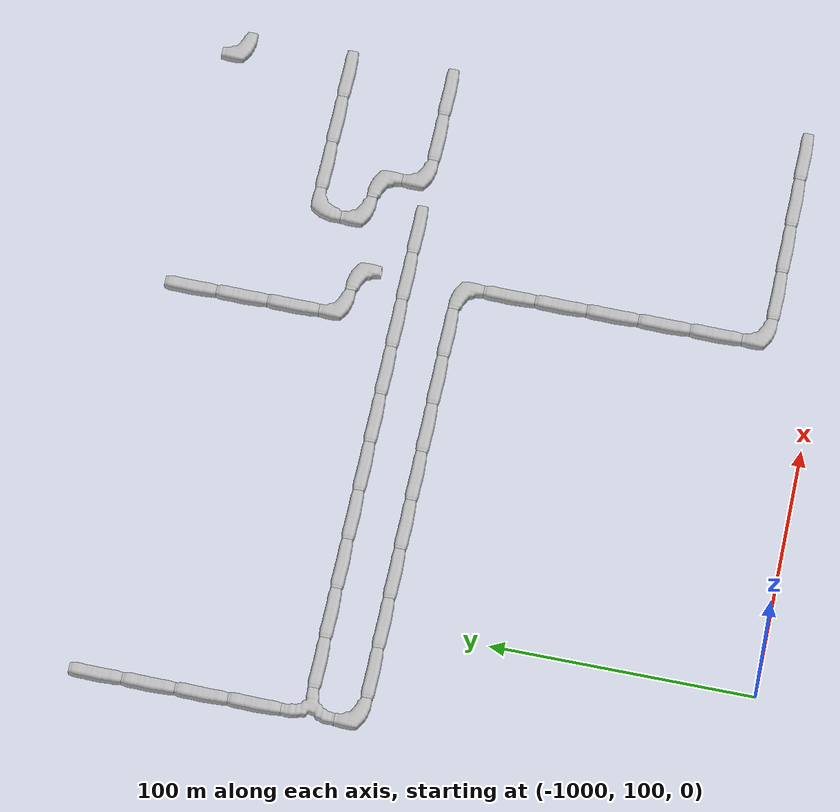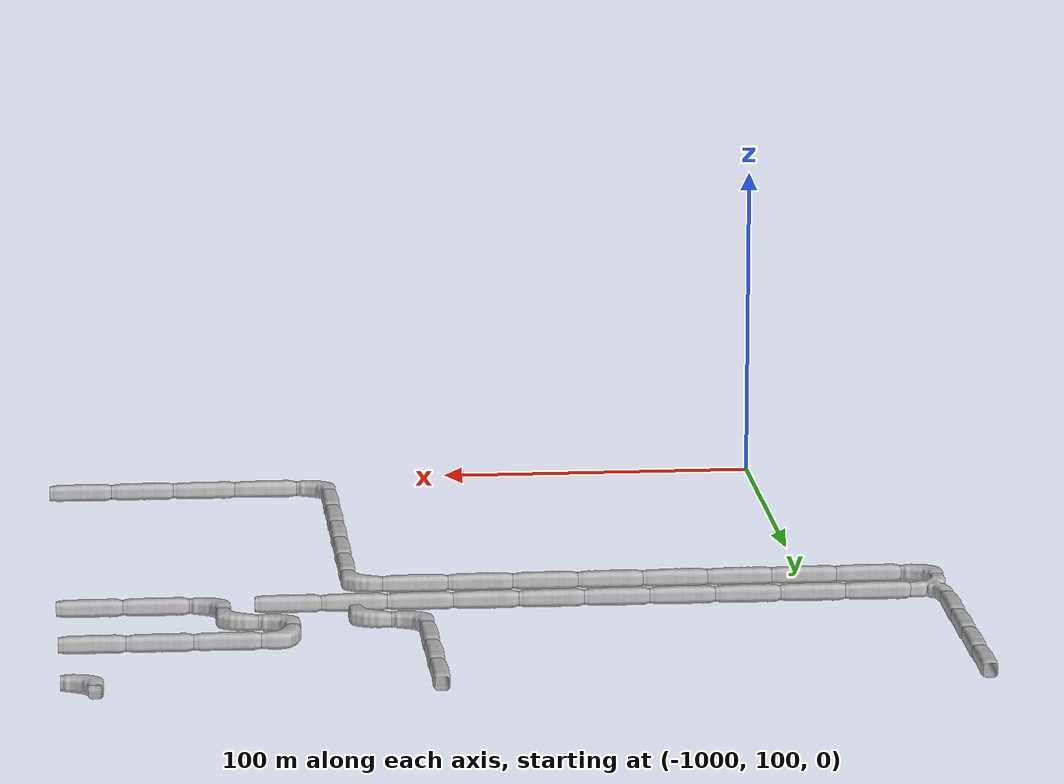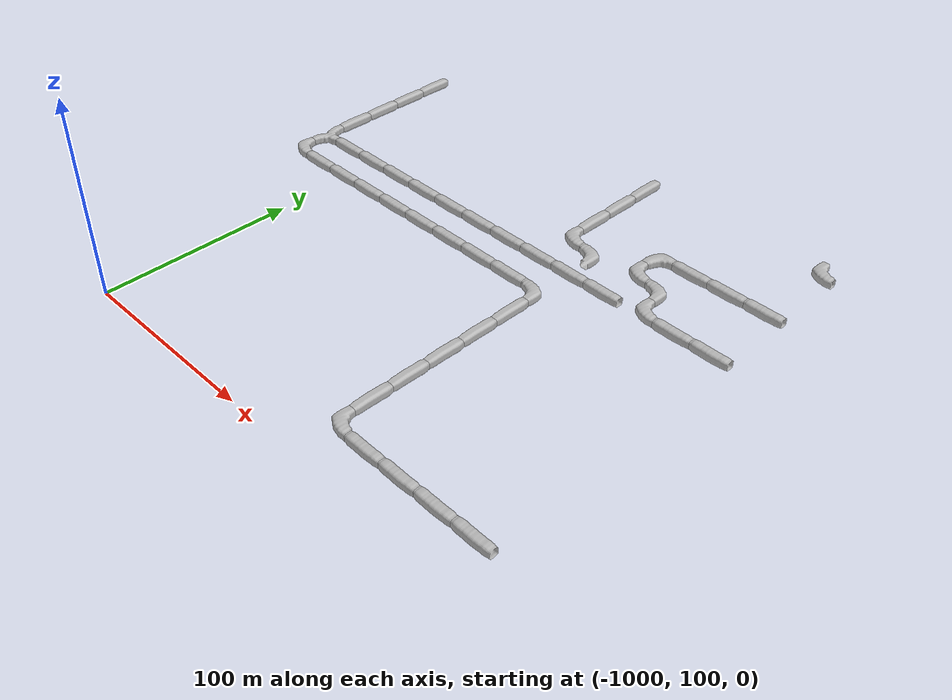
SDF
<sdf version="1.6">
 <world name="cave_16000">
  <include>
   <static>true</static>
   <name>cave_-39_6</name>
   <pose>-780 120 0 0 0 1.5707963267948966</pose>
   <uri>model://cave_straight_20m</uri>
  </include>
  <include>
   <static>true</static>
   <name>cave_-40_6</name>
   <pose>-800 120 0 0 0 1.5707963267948966</pose>
   <uri>model://cave_straight_20m</uri>
  </include>
  <include>
   <static>true</static>
   <name>cave_-41_6</name>
   <pose>-820 120 0 0 0 1.5707963267948966</pose>
   <uri>model://cave_straight_20m</uri>
  </include>
  <include>
   <static>true</static>
   <name>cave_-42_6</name>
   <pose>-840 120 0 0 0 1.5707963267948966</pose>
   <uri>model://cave_straight_20m</uri>
  </include>
  <include>
   <static>true</static>
   <name>cave_-43_6</name>
   <pose>-860 120 0 0 0 0.0</pose>
   <uri>model://cave_L_20m</uri>
  </include>
  <include>
   <static>true</static>
   <name>cave_-43_7</name>
   <pose>-860 140 0 0 0 0.0</pose>
   <uri>model://cave_straight_20m</uri>
  </include>
  <include>
   <static>true</static>
   <name>cave_-43_8</name>
   <pose>-860 160 0 0 0 0.0</pose>
   <uri>model://cave_straight_20m</uri>
  </include>
  <include>
   <static>true</static>
   <name>cave_-43_9</name>
   <pose>-860 180 0 0 0 0.0</pose>
   <uri>model://cave_straight_20m</uri>
  </include>
  <include>
   <static>true</static>
   <name>cave_-43_10</name>
   <pose>-860 200 0 0 0 0.0</pose>
   <uri>model://cave_straight_20m</uri>
  </include>
  <include>
   <static>true</static>
   <name>cave_-43_11</name>
   <pose>-860 220 0 0 0 0.0</pose>
   <uri>model://cave_straight_20m</uri>
  </include>
  <include>
   <static>true</static>
   <name>cave_-43_12</name>
   <pose>-860 240 0 0 0 3.141592653589793</pose>
   <uri>model://cave_L_20m</uri>
  </include>
  <include>
   <static>true</static>
   <name>cave_-44_12</name>
   <pose>-880 240 0 0 0 1.5707963267948966</pose>
   <uri>model://cave_straight_20m</uri>
  </include>
  <include>
   <static>true</static>
   <name>cave_-45_12</name>
   <pose>-900 240 0 0 0 1.5707963267948966</pose>
   <uri>model://cave_straight_20m</uri>
  </include>
  <include>
   <static>true</static>
   <name>cave_-46_12</name>
   <pose>-920 240 0 0 0 1.5707963267948966</pose>
   <uri>model://cave_straight_20m</uri>
  </include>
  <include>
   <static>true</static>
   <name>cave_-47_12</name>
   <pose>-940 240 0 0 0 1.5707963267948966</pose>
   <uri>model://cave_straight_20m</uri>
  </include>
  <include>
   <static>true</static>
   <name>cave_-48_12</name>
   <pose>-960 240 0 0 0 1.5707963267948966</pose>
   <uri>model://cave_straight_20m</uri>
  </include>
  <include>
   <static>true</static>
   <name>cave_-49_12</name>
   <pose>-980 240 0 0 0 1.5707963267948966</pose>
   <uri>model://cave_straight_20m</uri>
  </include>
  <include>
   <static>true</static>
   <name>cave_-50_12</name>
   <pose>-1000 240 0 0 0 1.5707963267948966</pose>
   <uri>model://cave_straight_20m</uri>
  </include>
  <include>
   <static>true</static>
   <name>cave_-51_12</name>
   <pose>-1020 240 0 0 0 1.5707963267948966</pose>
   <uri>model://cave_straight_20m</uri>
  </include>
  <include>
   <static>true</static>
   <name>cave_-52_12</name>
   <pose>-1040 240 0 0 0 0.0</pose>
   <uri>model://cave_L_20m</uri>
  </include>
  <include>
   <static>true</static>
   <name>cave_-52_13</name>
   <pose>-1040 260 0 0 0 -1.5707963267948966</pose>
   <uri>model://cave_3way_20m</uri>
  </include>
  <include>
   <static>true</static>
   <name>cave_-51_13</name>
   <pose>-1020 260 0 0 0 1.5707963267948966</pose>
   <uri>model://cave_straight_20m</uri>
  </include>
  <include>
   <static>true</static>
   <name>cave_-50_13</name>
   <pose>-1000 260 0 0 0 1.5707963267948966</pose>
   <uri>model://cave_straight_20m</uri>
  </include>
  <include>
   <static>true</static>
   <name>cave_-49_13</name>
   <pose>-980 260 0 0 0 1.5707963267948966</pose>
   <uri>model://cave_straight_20m</uri>
  </include>
  <include>
   <static>true</static>
   <name>cave_-48_13</name>
   <pose>-960 260 0 0 0 1.5707963267948966</pose>
   <uri>model://cave_straight_20m</uri>
  </include>
  <include>
   <static>true</static>
   <name>cave_-47_13</name>
   <pose>-940 260 0 0 0 1.5707963267948966</pose>
   <uri>model://cave_straight_20m</uri>
  </include>
  <include>
   <static>true</static>
   <name>cave_-46_13</name>
   <pose>-920 260 0 0 0 1.5707963267948966</pose>
   <uri>model://cave_straight_20m</uri>
  </include>
  <include>
   <static>true</static>
   <name>cave_-45_13</name>
   <pose>-900 260 0 0 0 1.5707963267948966</pose>
   <uri>model://cave_straight_20m</uri>
  </include>
  <include>
   <static>true</static>
   <name>cave_-44_13</name>
   <pose>-880 260 0 0 0 1.5707963267948966</pose>
   <uri>model://cave_straight_20m</uri>
  </include>
  <include>
   <static>true</static>
   <name>cave_-43_13</name>
   <pose>-860 260 0 0 0 1.5707963267948966</pose>
   <uri>model://cave_straight_20m</uri>
  </include>
  <include>
   <static>true</static>
   <name>cave_-42_13</name>
   <pose>-840 260 0 0 0 1.5707963267948966</pose>
   <uri>model://cave_straight_20m</uri>
  </include>
  <include>
   <static>true</static>
   <name>cave_-52_14</name>
   <pose>-1040 280 0 0 0 0.0</pose>
   <uri>model://cave_straight_20m</uri>
  </include>
  <include>
   <static>true</static>
   <name>cave_-52_15</name>
   <pose>-1040 300 0 0 0 0.0</pose>
   <uri>model://cave_straight_20m</uri>
  </include>
  <include>
   <static>true</static>
   <name>cave_-52_16</name>
   <pose>-1040 320 0 0 0 0.0</pose>
   <uri>model://cave_straight_20m</uri>
  </include>
  <include>
   <static>true</static>
   <name>cave_-52_17</name>
   <pose>-1040 340 0 0 0 0.0</pose>
   <uri>model://cave_straight_20m</uri>
  </include>
  <include>
   <static>true</static>
   <name>cave_-39_15</name>
   <pose>-780 300 0 0 0 1.5707963267948966</pose>
   <uri>model://cave_straight_20m</uri>
  </include>
  <include>
   <static>true</static>
   <name>cave_-40_15</name>
   <pose>-800 300 0 0 0 1.5707963267948966</pose>
   <uri>model://cave_straight_20m</uri>
  </include>
  <include>
   <static>true</static>
   <name>cave_-41_15</name>
   <pose>-820 300 0 0 0 1.5707963267948966</pose>
   <uri>model://cave_straight_20m</uri>
  </include>
  <include>
   <static>true</static>
   <name>cave_-42_15</name>
   <pose>-840 300 0 0 0 -1.5707963267948966</pose>
   <uri>model://cave_L_20m</uri>
  </include>
  <include>
   <static>true</static>
   <name>cave_-42_14</name>
   <pose>-840 280 0 0 0 0.0</pose>
   <uri>model://cave_L_20m</uri>
  </include>
  <include>
   <static>true</static>
   <name>cave_-41_14</name>
   <pose>-820 280 0 0 0 3.141592653589793</pose>
   <uri>model://cave_L_20m</uri>
  </include>
  <include>
   <static>true</static>
   <name>cave_-41_13</name>
   <pose>-820 260 0 0 0 0.0</pose>
   <uri>model://cave_L_20m</uri>
  </include>
  <include>
   <static>true</static>
   <name>cave_-40_13</name>
   <pose>-800 260 0 0 0 1.5707963267948966</pose>
   <uri>model://cave_straight_20m</uri>
  </include>
  <include>
   <static>true</static>
   <name>cave_-39_13</name>
   <pose>-780 260 0 0 0 1.5707963267948966</pose>
   <uri>model://cave_straight_20m</uri>
  </include>
  <include>
   <static>true</static>
   <name>cave_-39_17</name>
   <pose>-780 340 0 0 0 0.0</pose>
   <uri>model://cave_L_20m</uri>
  </include>
  <include>
   <static>true</static>
   <name>cave_-44_17</name>
   <pose>-880 340 0 0 0 0.0</pose>
   <uri>model://cave_straight_20m</uri>
  </include>
  <include>
   <static>true</static>
   <name>cave_-44_16</name>
   <pose>-880 320 0 0 0 0.0</pose>
   <uri>model://cave_straight_20m</uri>
  </include>
  <include>
   <static>true</static>
   <name>cave_-44_15</name>
   <pose>-880 300 0 0 0 0.0</pose>
   <uri>model://cave_straight_20m</uri>
  </include>
  <include>
   <static>true</static>
   <name>cave_-44_14</name>
   <pose>-880 280 0 0 0 0.0</pose>
   <uri>model://cave_L_20m</uri>
  </include>
  <include>
   <static>true</static>
   <name>cave_-43_14</name>
   <pose>-860 280 0 0 0 3.141592653589793</pose>
   <uri>model://cave_L_20m</uri>
  </include>
 </world>
</sdf>
